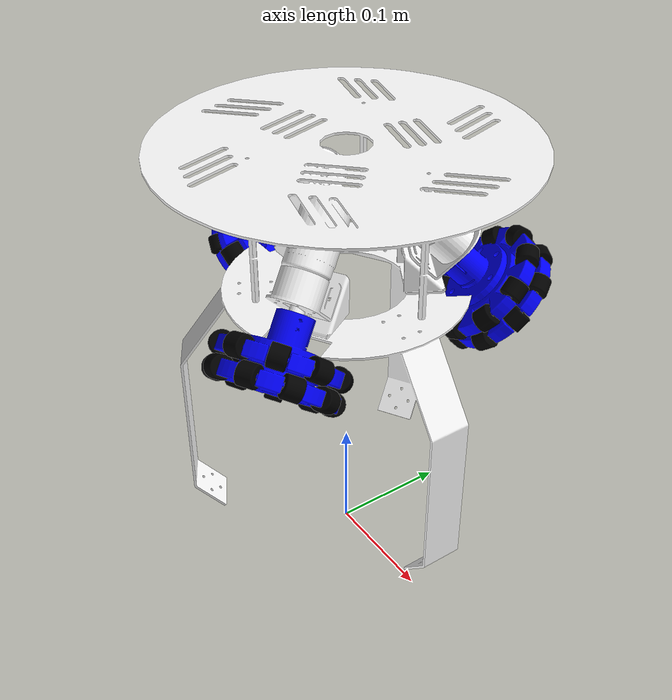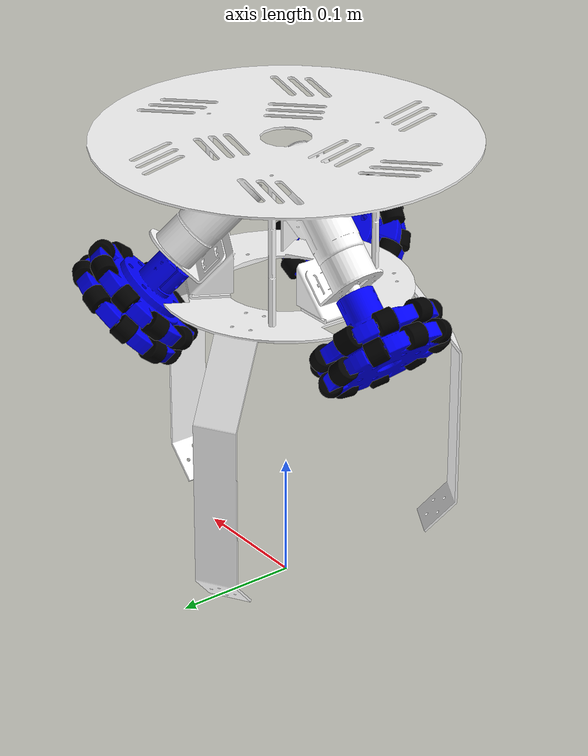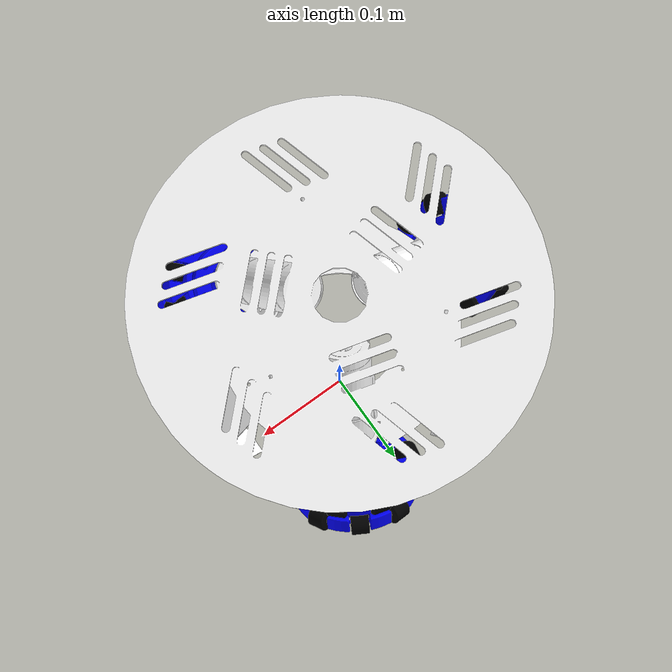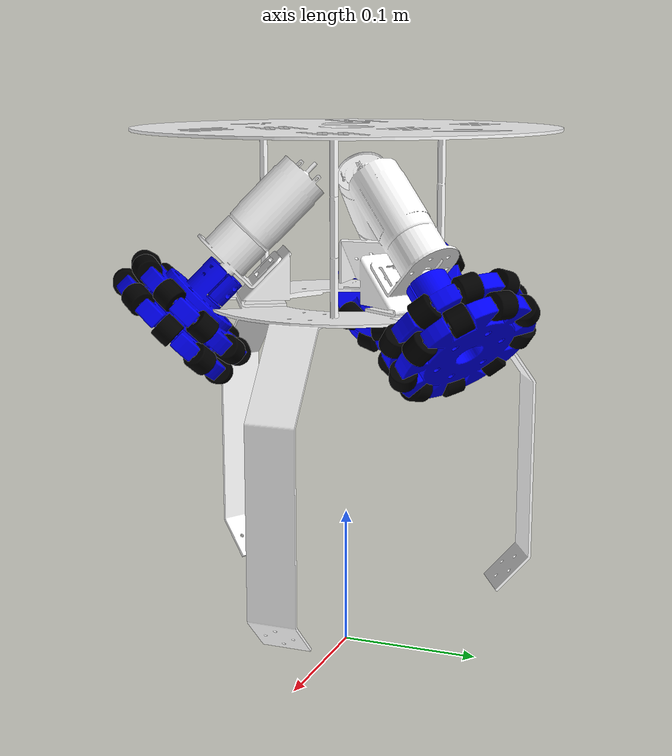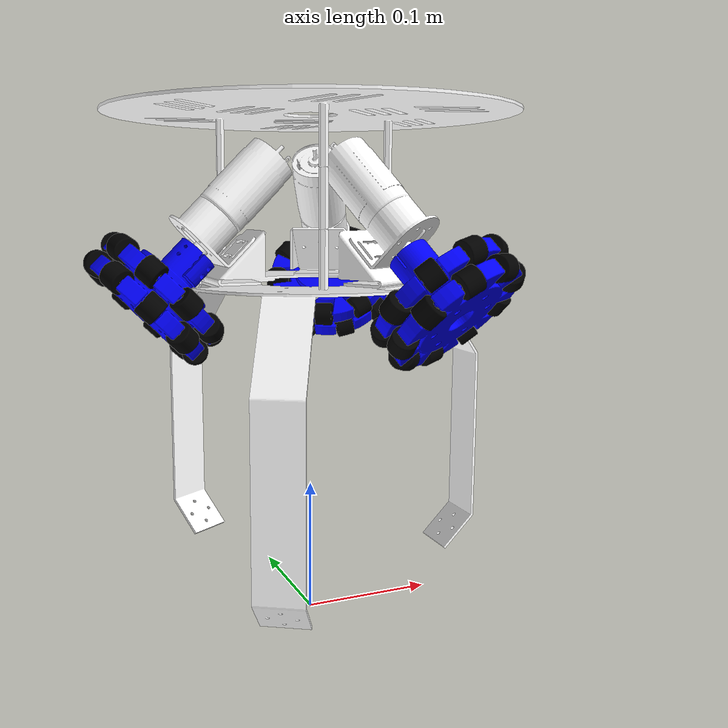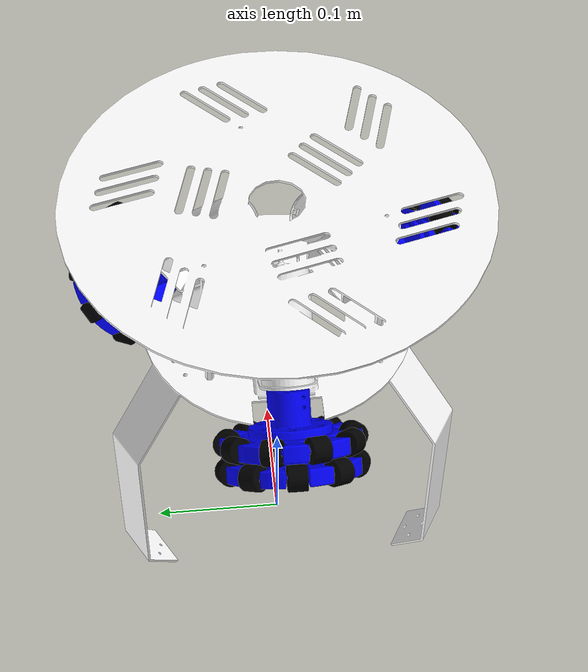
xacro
<?xml version="1.0"?>
<robot xmlns:xacro="http://www.ros.org/wiki/xacro" name="samr">

    <xacro:arg name="sim_mode" default="true"/>

    <!-- Include the core robot description -->
    <xacro:include filename="samr_core.xacro" />

    <!-- Always use Gazebo control -->
    <xacro:include filename="gazebo_control.xacro" />

    <!-- Optionally include other components if needed -->

</robot>

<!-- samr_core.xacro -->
<robot xmlns:xacro="http://www.ros.org/wiki/xacro" name="samr">

    <xacro:property name="PI" value="3.1415926535897931"/>

    <xacro:property name="chassis_radius" value="0.085"/>
    <xacro:property name="wheel_thickness" value="0.01905" />
    <xacro:property name="motor_shaft_length" value="0.005475"/>

    <xacro:include filename="$(find sAMR_description)/urdf/materials.urdf.xacro"/>
    <xacro:include filename="$(find sAMR_description)/urdf/wheel.urdf.xacro"/>
    <xacro:include filename="$(find sAMR_description)/urdf/ros2_control.xacro"/>

    <link name="base_footprint"/>

    <joint name="base_joint" type="fixed">
        <parent link="base_footprint"/>
        <child link="base_link"/>
        <origin xyz="0 0 0.37985" rpy="0 0 0"/>
    </joint>

    <link name="base_link">
        <visual>
            <origin xyz="0 0 0.0" rpy="0 0 ${PI/6}"/>
            <geometry>
                <mesh filename="file://$(find sAMR_description)/meshes/baselink.stl" scale="0.001 0.001 0.001"/>
            </geometry>
            <material name="white"/>
        </visual>
        <collision>
            <origin xyz="0 0 0" rpy="0 0 ${PI/6}"/>
            <geometry>
                <mesh filename="file://$(find sAMR_description)/meshes/baselink.stl" scale="0.001 0.001 0.001"/>
            </geometry>
        </collision>
        <inertial>
            <origin xyz="-0.0058 -0.0034 -0.08134" rpy="0.0 0.0 0.0"/>
            <mass value="2.428"/>
            <inertia ixx="0.04625" ixy="0.000085" ixz="0.000287" iyy="0.04634" iyz="0.000166" izz="0.02341"/>
        </inertial>
    </link>

    <joint name="dummy_joint" type="fixed">
        <parent link="base_link"/>
        <child link="dummy_link"/>
        <origin xyz="-0.0058 -0.0034 -0.05365" rpy="0 0 0"/>
    </joint>

    <link name="dummy_link">
        <origin xyz="-0.0058 -0.0034 -0.05365" rpy="0.0 0.0 0.0"/>
            <geometry>
                <sphere radius="0.001"/>
            </geometry>
    </link>

    <!-- Define wheels dynamically -->
    <xacro:wheel_macro suffix="1" theta="${PI}" chassis_radius="${chassis_radius}"
                    material="blue"/>
    <xacro:wheel_macro suffix="2" theta="${-PI/3}" chassis_radius="${chassis_radius}"
                    material="blue"/>
    <xacro:wheel_macro suffix="3" theta="${PI/3}" chassis_radius="${chassis_radius}"
                    material="blue"/>
</robot>

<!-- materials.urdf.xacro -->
<robot xmlns:xacro="http://www.ros.org/wiki/xacro" name="samr">
  <!-- Green material -->
  <material name="green">
    <color rgba="0.0 0.8 0.0 1.0"/>
  </material>

  <!-- Black material -->
  <material name="black">
    <color rgba="0.0 0.0 0.0 1.0"/>
  </material>

  <!-- Grey material -->
  <material name="grey">
    <color rgba="0.2 0.2 0.2 1.0"/>
  </material>

  <!-- Red material -->
  <material name="red">
    <color rgba="1.0 0.0 0.0 1.0"/>
  </material>

  <!-- Blue material -->
  <material name="blue">
    <color rgba="0.0 0.0 1.0 1.0"/>
  </material>

  <!-- Yellow material -->
  <material name="yellow">
    <color rgba="1.0 1.0 0.0 1.0"/>
  </material>

  <!-- White material -->
  <material name="white">
    <color rgba="1.0 1.0 1.0 1.0"/>
  </material>

  <!-- Orange material -->
  <material name="orange">
    <color rgba="1.0 0.647 0.0 1.0"/>
  </material>

  <!-- Purple material -->
  <material name="purple">
    <color rgba="0.5 0.0 0.5 1.0"/>
  </material>

  <!-- Cyan material -->
  <material name="cyan">
    <color rgba="0.0 1.0 1.0 1.0"/>
  </material>

  <!-- Magenta material -->
  <material name="magenta">
    <color rgba="1.0 0.0 1.0 1.0"/>
  </material>

  <!-- Pink material -->
  <material name="pink">
    <color rgba="1.0 0.75 0.8 1.0"/>
  </material>

  <!-- Brown material -->
  <material name="brown">
    <color rgba="0.6 0.3 0.0 1.0"/>
  </material>

</robot>

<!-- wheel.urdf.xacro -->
<robot xmlns:xacro="http://www.ros.org/wiki/xacro">
    <xacro:property name="distance_to_roller_center" value="0.04509"/>

    <!-- roller creation -->
    <xacro:macro name="insert_roller" params="parent reflect theta suffix wheel">
        <joint name="rim_to_roller${wheel}${suffix}joint" type="continuous">
            <origin xyz="${distance_to_roller_center*cos(theta)} ${distance_to_roller_center*sin(theta)} ${reflect*0.008 + 0.045}" rpy="0.0 0.0 ${theta-PI/2}"/>
            <parent link="${parent}"/>
            <child link="roller${wheel}${suffix}_link"/>
            <axis xyz="1.0 0.0 0.0"/>
            <dynamics friction="0.1"/>
        </joint>

        <link name="roller${wheel}${suffix}_link">
            <visual>
                <origin xyz="0.0 0.0 0.0" rpy="0.0 0.0 0.0"/>
                <geometry>
                    <mesh filename="package://sAMR_description/meshes/roller.stl" scale= "0.001 0.001 0.001"/>
                </geometry>
                <material name="black"/>
            </visual>

            <collision>
                <origin xyz="0.0 0.0 0.0" rpy="0.0 0.0 0.0"/>
                <geometry>
                    <mesh filename="package://sAMR_description/meshes/roller.stl" scale= "0.001 0.001 0.001"/>
                </geometry>
            </collision>

            <inertial>
                <origin xyz="0.0 0.0 0.0" rpy="0.0 0.0 0.0"/>
                <mass value="0.003"/>
                <inertia ixx="5.3e-8"
                         ixy="0.0"
                         ixz="0.0"
                         iyy="8e-8"
                         iyz="0.0"
                         izz="8e-8"/>
            </inertial>
        </link>
        <gazebo reference="roller${wheel}${suffix}_link">
            <material>Gazebo/Black</material>
            <fdir1>1 0 0"</fdir1>
            <mu1>100</mu1>
            <mu2>100</mu2>
            <minDepth>0.001</minDepth>
        </gazebo>

    </xacro:macro>

    <!-- Macro to define a wheel -->
    <xacro:macro name="wheel_macro" params="suffix theta chassis_radius material">
        <!-- Joint for the wheel -->
        <joint name="wheel${suffix}_joint" type="continuous">
            <parent link="base_link"/>
            <child link="wheel${suffix}_link"/>
            <origin xyz="${chassis_radius*cos(theta)} ${chassis_radius*sin(theta)} -0.09953"
                    rpy="0.0 -2.35619 ${theta+PI}"/>
            <axis xyz="0.0 0.0 1.0"/>
        </joint>

        <!-- Link for the wheel -->
        <link name="wheel${suffix}_link">
            <visual>
                <origin xyz="0.0 0.0 0.0" rpy="0.0 0.0 0.0"/>
                <geometry>
                    <mesh filename="package://sAMR_description/meshes/wheel.stl" scale="0.001 0.001 0.001"/>
                </geometry>
                <material name="${material}"/>
            </visual>

            <collision>
                <origin xyz="0.0 0.0 0.0" rpy="0.0 0.0 0.0"/>
                <geometry>
                    <mesh filename="package://sAMR_description/meshes/wheel.stl" scale="0.001 0.001 0.001"/>
                </geometry>
            </collision>

            <!-- Optional: Inertial properties -->
            <inertial>
                <origin xyz="0 0 0"/>
                <mass value="0.0285"/> <!-- Adjust based on your design -->
                <inertia ixx="1.1e-05" ixy="0" ixz="0"
                         iyy="1.1e-05" iyz="0"
                         izz="2.1e-05"/>
            </inertial>
        </link>

        <!-- First-layer(from shaft) -->
        <xacro:insert_roller parent="wheel${suffix}_link" reflect="1.1" theta="0" suffix="1" wheel="${suffix}"/>
        <xacro:insert_roller parent="wheel${suffix}_link" reflect="1.1" theta="${2*PI/9}" suffix="2" wheel="${suffix}"/>
        <xacro:insert_roller parent="wheel${suffix}_link" reflect="1.1" theta="${4*PI/9}" suffix="3" wheel="${suffix}"/>
        <xacro:insert_roller parent="wheel${suffix}_link" reflect="1.1" theta="${6*PI/9}" suffix="4" wheel="${suffix}"/>
        <xacro:insert_roller parent="wheel${suffix}_link" reflect="1.1" theta="${8*PI/9}" suffix="5" wheel="${suffix}"/>
        <xacro:insert_roller parent="wheel${suffix}_link" reflect="1.1" theta="${10*PI/9}" suffix="6" wheel="${suffix}"/>
        <xacro:insert_roller parent="wheel${suffix}_link" reflect="1.1" theta="${12*PI/9}" suffix="7" wheel="${suffix}"/>
        <xacro:insert_roller parent="wheel${suffix}_link" reflect="1.1" theta="${14*PI/9}" suffix="8" wheel="${suffix}"/>
        <xacro:insert_roller parent="wheel${suffix}_link" reflect="1.1" theta="${16*PI/9}" suffix="9" wheel="${suffix}"/>

        <xacro:insert_roller parent="wheel${suffix}_link" reflect="-1.1" theta="${PI/9}" suffix="-1" wheel="${suffix}"/>
        <xacro:insert_roller parent="wheel${suffix}_link" reflect="-1.1" theta="${PI/3}" suffix="-2" wheel="${suffix}"/>
        <xacro:insert_roller parent="wheel${suffix}_link" reflect="-1.1" theta="${5*PI/9}" suffix="-3" wheel="${suffix}"/>
        <xacro:insert_roller parent="wheel${suffix}_link" reflect="-1.1" theta="${7*PI/9}" suffix="-4" wheel="${suffix}"/>
        <xacro:insert_roller parent="wheel${suffix}_link" reflect="-1.1" theta="${9*PI/9}" suffix="-5" wheel="${suffix}"/>
        <xacro:insert_roller parent="wheel${suffix}_link" reflect="-1.1" theta="${11*PI/9}" suffix="-6" wheel="${suffix}"/>
        <xacro:insert_roller parent="wheel${suffix}_link" reflect="-1.1" theta="${13*PI/9}" suffix="-7" wheel="${suffix}"/>
        <xacro:insert_roller parent="wheel${suffix}_link" reflect="-1.1" theta="${15*PI/9}" suffix="-8" wheel="${suffix}"/>
        <xacro:insert_roller parent="wheel${suffix}_link" reflect="-1.1" theta="${17*PI/9}" suffix="-9" wheel="${suffix}"/>

    </xacro:macro>

</robot>
